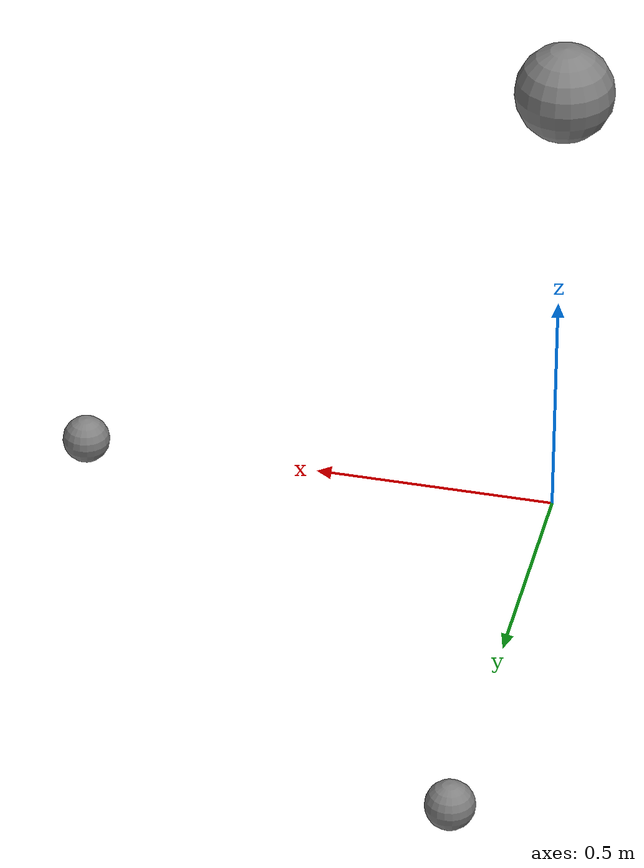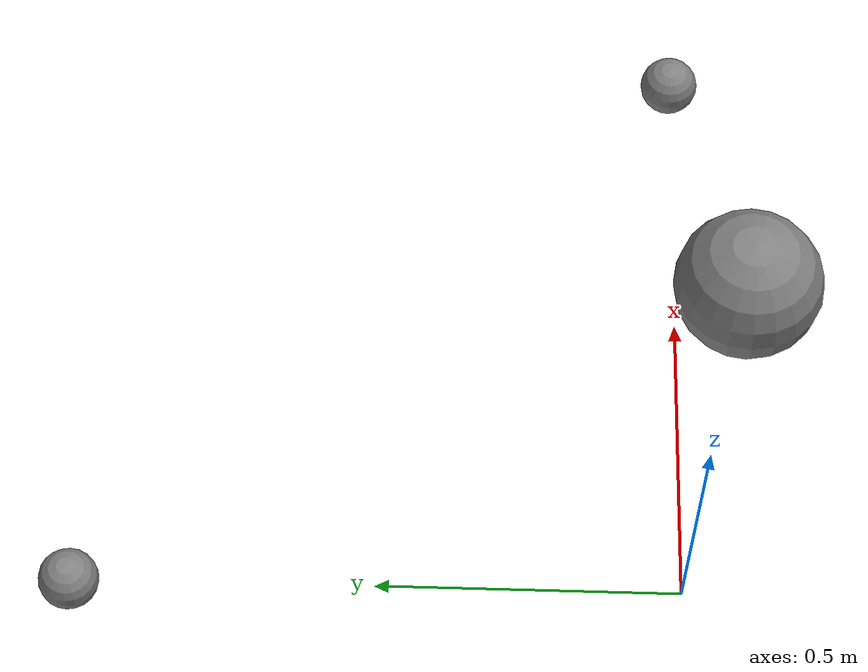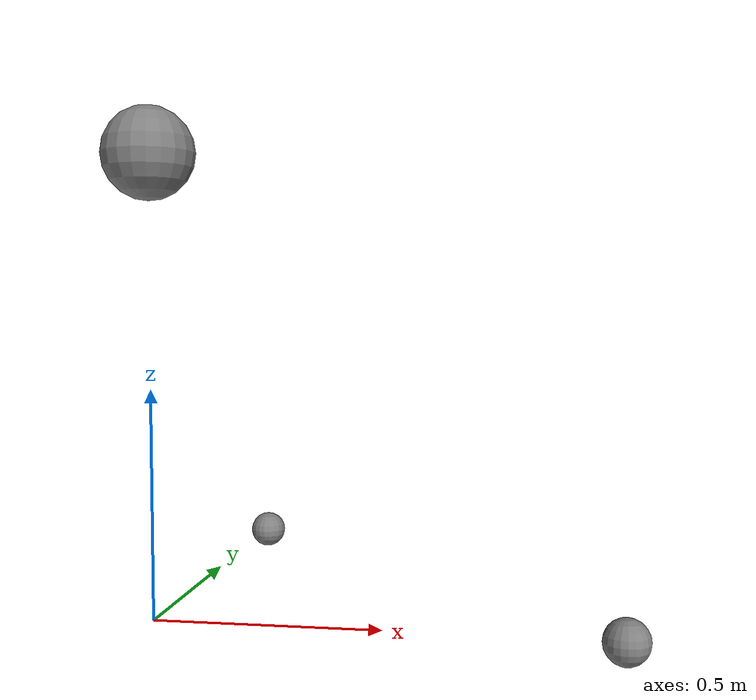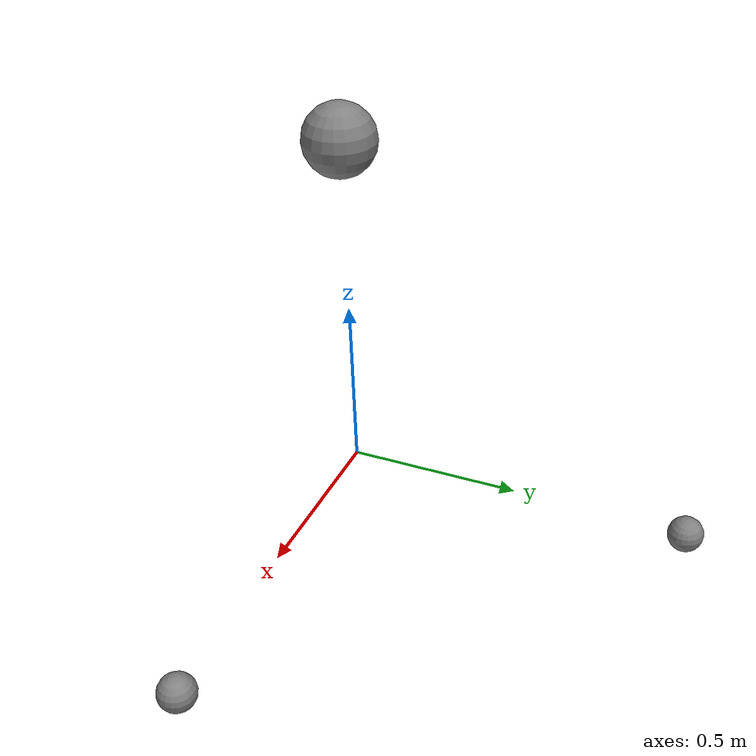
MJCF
<mujoco model="mocap_two">
        <option gravity="0 0 -9.81" timestep="0.002"/>
        <worldbody>
            <body name="target_a" mocap="true" pos="1 0 0">
                <geom type="sphere" size="0.05" mass="0.1"/>
            </body>
            <body name="target_b" mocap="true" pos="0 1 0">
                <geom type="sphere" size="0.05" mass="0.2"/>
            </body>
            <body name="link" pos="0 0 1">
                <joint name="hinge" type="hinge" axis="0 1 0"/>
                <geom type="sphere" size="0.1" mass="1.0"/>
            </body>
        </worldbody>
    </mujoco>
